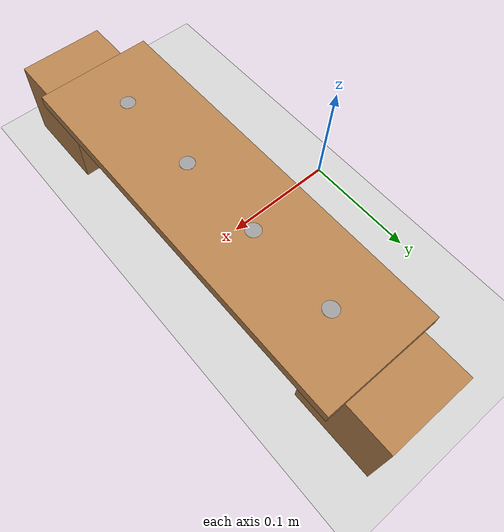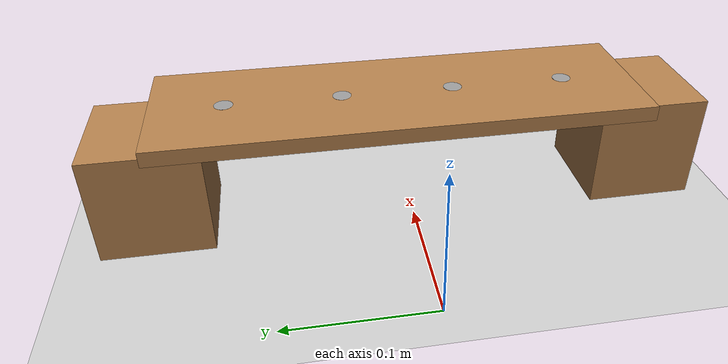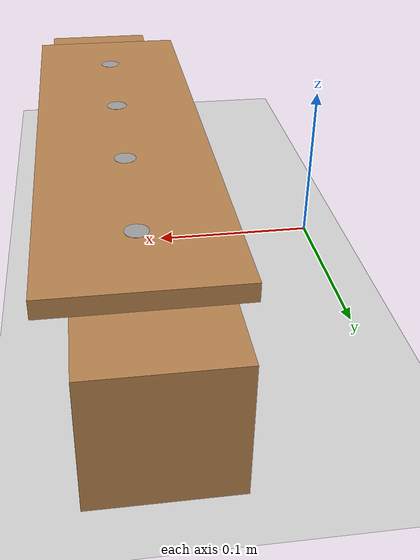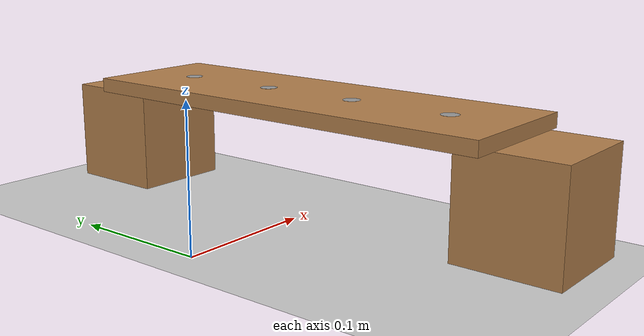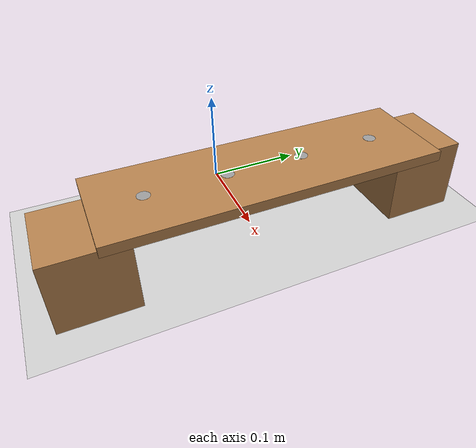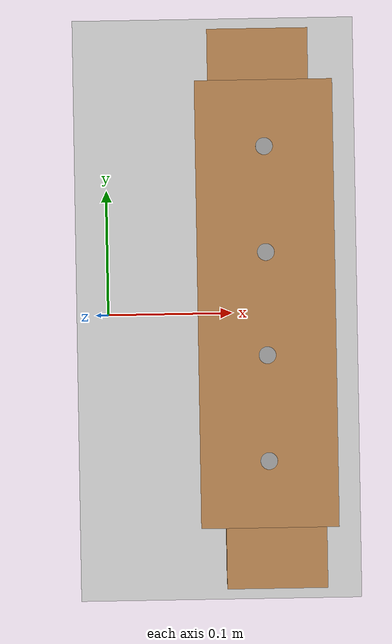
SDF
<sdf version="1.6">
 <world name="default">
  <light name="sun" type="directional">
   <pose>0 0 10 0 -0 0</pose>
   <diffuse>0.8 0.8 0.8 1</diffuse>
   <specular>0.2 0.2 0.2 1</specular>
   <attenuation>
    <range>1000</range>
    <constant>0.9</constant>
    <linear>0.01</linear>
    <quadratic>0.001</quadratic>
   </attenuation>
   <direction>-0.5 0.1 -0.9</direction>
  </light>
  <model name="ground_plane">
   <static>1</static>
   <link name="link">
    <collision name="collision">
     <geometry><plane><normal>0 0 1</normal><size>100 100</size></plane></geometry>
     <surface>
      <contact><collide_bitmask>65535</collide_bitmask></contact>
      <friction><ode><mu>100</mu><mu2>50</mu2></ode></friction>
     </surface>
    </collision>
    <visual name="visual">
     <cast_shadows>0</cast_shadows>
     <geometry><plane><normal>0 0 1</normal><size>100 100</size></plane></geometry>
     <material>
      <script><uri>file://media/materials/scripts/gazebo.material</uri><name>Gazebo/Grey</name></script>
     </material>
    </visual>
   </link>
  </model>
  <gravity>0 0 -9.8</gravity>
  <magnetic_field>6e-06 2.3e-05 -4.2e-05</magnetic_field>
  <atmosphere type="adiabatic"/>
  <physics name="default_physics" default="0" type="ode">
   <max_step_size>0.001</max_step_size>
   <real_time_factor>1</real_time_factor>
   <real_time_update_rate>1000</real_time_update_rate>
  </physics>
  <scene><ambient>0.4 0.4 0.4 1</ambient><background>0.7 0.7 0.7 1</background><shadows>0</shadows></scene>
  <audio><device>default</device></audio>
  <spherical_coordinates>
   <surface_model>EARTH_WGS84</surface_model>
   <latitude_deg>0</latitude_deg>
   <longitude_deg>0</longitude_deg>
   <elevation>0</elevation>
   <heading_deg>0</heading_deg>
  </spherical_coordinates>
  <model name="wood_cube_7_5cm">
   <link name="link">
    <pose>0 0 0.0375 0 -0 0</pose>
    <inertial>
     <mass>0.2249</mass>
     <inertia>
      <ixx>0.000210844</ixx>
      <ixy>0</ixy>
      <ixz>0</ixz>
      <iyy>0.000210844</iyy>
      <iyz>0</iyz>
      <izz>0.000210844</izz>
     </inertia>
    </inertial>
    <collision name="collision">
     <geometry><box><size>0.075 0.075 0.075</size></box></geometry>
     <surface>
      <contact>
       <poissons_ratio>0.347</poissons_ratio>
       <elastic_modulus>8.8e+09</elastic_modulus>
       <ode><kp>100000</kp><kd>100</kd><max_vel>100</max_vel><min_depth>0.001</min_depth></ode>
      </contact>
      <friction>
       <torsional>
        <coefficient>1</coefficient>
        <use_patch_radius>0</use_patch_radius>
        <surface_radius>0.01</surface_radius>
       </torsional>
      </friction>
     </surface>
    </collision>
    <visual name="visual">
     <geometry><box><size>0.075 0.075 0.075</size></box></geometry>
     <material>
      <script><uri>file://media/materials/scripts/gazebo.material</uri><name>Gazebo/Wood</name></script>
     </material>
    </visual>
   </link>
   <pose>0.129633 -0.167866 0 0 0 0</pose>
  </model>
  <model name="wood_cube_7_5cm_0">
   <link name="link">
    <pose>0 0 0.0375 0 -0 0</pose>
    <inertial>
     <mass>0.2249</mass>
     <inertia>
      <ixx>0.000210844</ixx>
      <ixy>0</ixy>
      <ixz>0</ixz>
      <iyy>0.000210844</iyy>
      <iyz>0</iyz>
      <izz>0.000210844</izz>
     </inertia>
    </inertial>
    <collision name="collision">
     <geometry><box><size>0.075 0.075 0.075</size></box></geometry>
     <surface>
      <contact>
       <poissons_ratio>0.347</poissons_ratio>
       <elastic_modulus>8.8e+09</elastic_modulus>
       <ode><kp>100000</kp><kd>100</kd><max_vel>100</max_vel><min_depth>0.001</min_depth></ode>
      </contact>
      <friction>
       <torsional>
        <coefficient>1</coefficient>
        <use_patch_radius>0</use_patch_radius>
        <surface_radius>0.01</surface_radius>
       </torsional>
      </friction>
     </surface>
    </collision>
    <visual name="visual">
     <geometry><box><size>0.075 0.075 0.075</size></box></geometry>
     <material>
      <script><uri>file://media/materials/scripts/gazebo.material</uri><name>Gazebo/Wood</name></script>
     </material>
    </visual>
   </link>
   <pose>0.120857 0.174807 0. 0 0 0</pose>
  </model>
  <model name="wooden_board">
   <link name="base">
    <pose>0 0 0.00523 0 0 0</pose>
    <inertial>
     <mass>0.2765</mass>
     <inertia>
      <ixx>0.0025148</ixx>
      <ixy>0</ixy>
      <ixz>0</ixz>
      <iyy>0.00024037</iyy>
      <iyz>0</iyz>
      <izz>0.00275013</izz>
     </inertia>
    </inertial>
    <collision name="collision">
     <geometry><box><size>0.1016 0.3302 0.01046</size></box></geometry>
     <surface>
      <contact>
       <poissons_ratio>0.347</poissons_ratio>
       <elastic_modulus>8.8e+09</elastic_modulus>
       <ode><kp>100000</kp><kd>100</kd><max_vel>100</max_vel><min_depth>0.001</min_depth></ode>
      </contact>
      <friction>
       <torsional>
        <coefficient>1</coefficient>
        <use_patch_radius>0</use_patch_radius>
        <surface_radius>0.01</surface_radius>
       </torsional>
      </friction>
     </surface>
    </collision>
    <visual name="visual">
     <geometry><box><size>0.1016 0.3302 0.01046</size></box></geometry>
     <material>
      <script><uri>file://media/materials/scripts/gazebo.material</uri><name>Gazebo/Wood</name></script>
     </material>
    </visual>
    <visual name="tee_nut_1">
     <pose>0 -0.116 0 0 -0 0</pose>
     <geometry><cylinder><radius>0.00635</radius><length>0.0105646</length></cylinder></geometry>
     <material>
      <script><uri>file://media/materials/scripts/gazebo.material</uri><name>Gazebo/Grey</name></script>
     </material>
    </visual>
    <visual name="tee_nut_2">
     <pose>0 -0.038 0 0 -0 0</pose>
     <geometry><cylinder><radius>0.00635</radius><length>0.0105646</length></cylinder></geometry>
     <material>
      <script><uri>file://media/materials/scripts/gazebo.material</uri><name>Gazebo/Grey</name></script>
     </material>
    </visual>
    <visual name="tee_nut_3">
     <pose>0 0.038 0 0 -0 0</pose>
     <geometry><cylinder><radius>0.00635</radius><length>0.0105646</length></cylinder></geometry>
     <material>
      <script><uri>file://media/materials/scripts/gazebo.material</uri><name>Gazebo/Grey</name></script>
     </material>
    </visual>
    <visual name="tee_nut_4">
     <pose>0 0.116 0 0 -0 0</pose>
     <geometry><cylinder><radius>0.00635</radius><length>0.0105646</length></cylinder></geometry>
     <material>
      <script><uri>file://media/materials/scripts/gazebo.material</uri><name>Gazebo/Grey</name></script>
     </material>
    </visual>
   </link>
   <pose>0.12443 0.006945 0.075 0 0 0</pose>
  </model>
 </world>
</sdf>
